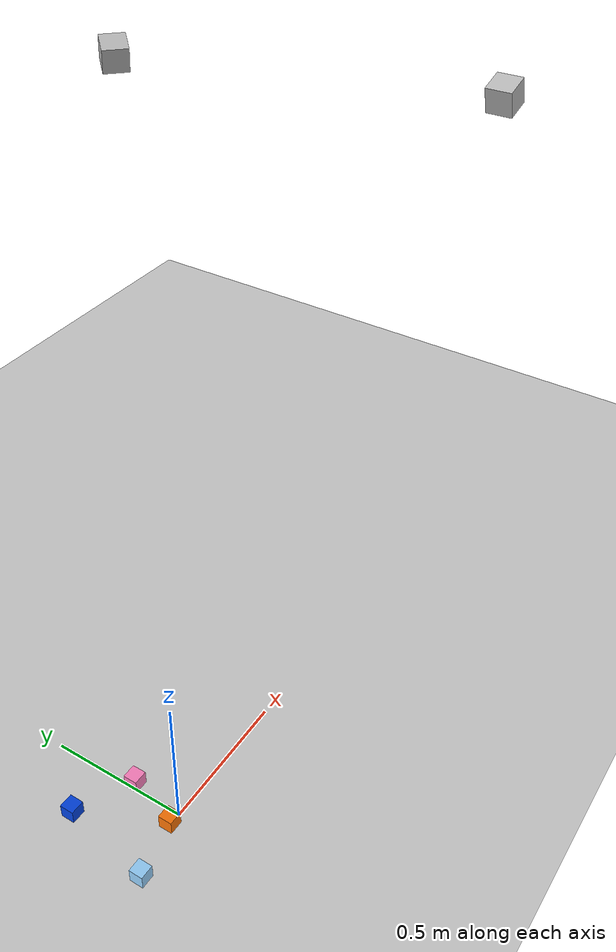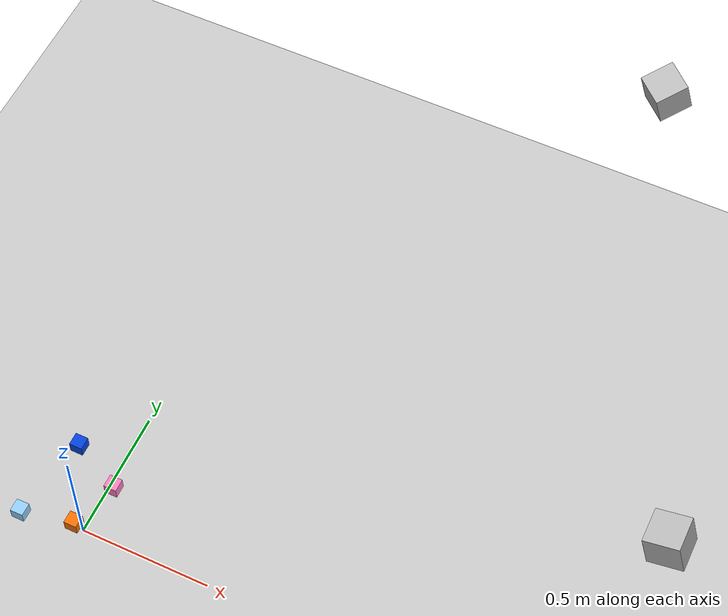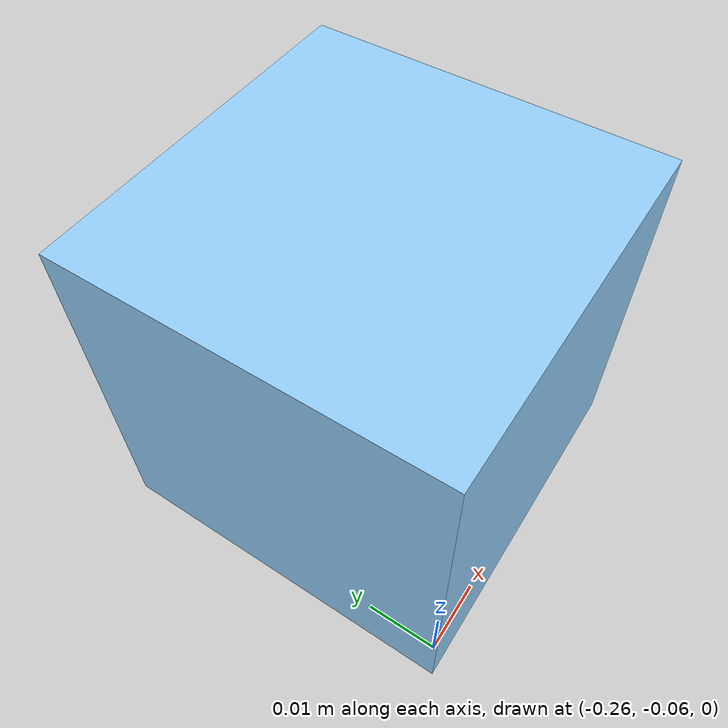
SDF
<?xml version="1.0" encoding="UTF-8"?>
<sdf version="1.8">
  <world name="panda_world">
    <frame name="table1">
      <pose>0 0 0 0 -0 1.5708</pose>
    </frame>
    <frame name="table2">
      <pose>0.794 0 0 0 -0 1.5708</pose>
    </frame>
    <gravity>0 0 -9.8</gravity>
    <magnetic_field>5.5645e-6 22.8758e-6 -42.3884e-6</magnetic_field>
    <physics name="1ms" default="false" type="ignored">
      <max_step_size>0.001</max_step_size>
      <real_time_factor>1.0</real_time_factor>
      <real_time_update_rate>1000.0</real_time_update_rate>
      <max_contacts>20</max_contacts>
    </physics>
    <scene>
      <ambient>0.4 0.4 0.4 1</ambient>
      <background>0.7 0.7 0.7 1</background>
      <shadows>true</shadows>
      <grid>true</grid>
      <origin_visual>true</origin_visual>
    </scene>
    <light name="sun" type="directional">
      <cast_shadows>true</cast_shadows>
      <intensity>1.0</intensity>
      <diffuse>0.8 0.8 0.8 1</diffuse>
      <specular>0.2 0.2 0.2 1</specular>
      <attenuation>
        <range>1000.0</range>
        <linear>0.01</linear>
        <constant>0.9</constant>
        <quadratic>0.001</quadratic>
      </attenuation>
      <direction>-0.5 0.1 -0.9</direction>
      <spot>
        <inner_angle>0.0</inner_angle>
        <outer_angle>0.0</outer_angle>
        <falloff>0.0</falloff>
      </spot>
      <pose>0 0 10 0 -0 0</pose>
    </light>
    <frame name="tabletop_1">
      <pose relative_to="table1">0 0 1.015 0 0 0</pose>
    </frame>
    <frame name="tabletop_2">
      <pose relative_to="table2">0 0 1.015 0 0 0</pose>
    </frame>
    <model name="ground_plane">
      <static>true</static>
      <self_collide>false</self_collide>
      <allow_auto_disable>true</allow_auto_disable>
      <enable_wind>false</enable_wind>
      <pose>0 0 0 0 -0 0</pose>
      <link name="link">
        <gravity>true</gravity>
        <enable_wind>false</enable_wind>
        <self_collide>false</self_collide>
        <kinematic>false</kinematic>
        <must_be_base_link>false</must_be_base_link>
        <collision name="collision">
          <laser_retro>0.0</laser_retro>
          <max_contacts>10</max_contacts>
          <geometry>
            <plane>
              <normal>0 0 1</normal>
              <size>1000 1000</size>
            </plane>
          </geometry>
          <surface>
            <friction>
              <ode>
                <mu>1.0</mu>
                <mu2>1.0</mu2>
                <fdir1>0 0 0</fdir1>
                <slip1>0.0</slip1>
                <slip2>0.0</slip2>
              </ode>
            </friction>
            <contact>
              <collide_without_contact>false</collide_without_contact>
              <collide_without_contact_bitmask>1</collide_without_contact_bitmask>
              <collide_bitmask>65535</collide_bitmask>
              <category_bitmask>65535</category_bitmask>
              <poissons_ratio>0.3</poissons_ratio>
              <elastic_modulus>-1.0</elastic_modulus>
            </contact>
          </surface>
        </collision>
        <visual name="visual">
          <cast_shadows>true</cast_shadows>
          <laser_retro>0.0</laser_retro>
          <transparency>0.0</transparency>
          <visibility_flags>4294967295</visibility_flags>
          <material>
            <render_order>0.0</render_order>
            <lighting>true</lighting>
            <ambient>0.8 0.8 0.8 1</ambient>
            <diffuse>0.8 0.8 0.8 1</diffuse>
            <specular>0.8 0.8 0.8 1</specular>
            <emissive>0 0 0 1</emissive>
            <double_sided>false</double_sided>
          </material>
          <geometry>
            <plane>
              <normal>0 0 1</normal>
              <size>100 100</size>
            </plane>
          </geometry>
          <plugin name="__default__" filename="__default__"/>
        </visual>
      </link>
      <plugin name="__default__" filename="__default__"/>
    </model>
    <model name="main_camera">
      <static>true</static>
      <self_collide>false</self_collide>
      <allow_auto_disable>true</allow_auto_disable>
      <enable_wind>false</enable_wind>
      <pose>2 0 1.75 -0 0.282863 3.14</pose>
      <link name="link">
        <gravity>true</gravity>
        <enable_wind>false</enable_wind>
        <self_collide>false</self_collide>
        <kinematic>false</kinematic>
        <must_be_base_link>false</must_be_base_link>
        <pose>0.05 0.05 0.05 0 -0 0</pose>
        <visual name="visual">
          <cast_shadows>true</cast_shadows>
          <laser_retro>0.0</laser_retro>
          <transparency>0.0</transparency>
          <visibility_flags>4294967295</visibility_flags>
          <geometry>
            <box>
              <size>0.1 0.1 0.1</size>
            </box>
          </geometry>
        </visual>
        <sensor name="camera" type="camera">
          <always_on>true</always_on>
          <update_rate>30.0</update_rate>
          <visualize>true</visualize>
          <topic>main_camera</topic>
          <enable_metrics>false</enable_metrics>
          <camera name="__default__">
            <horizontal_fov>1.13446</horizontal_fov>
            <image>
              <width>1920</width>
              <height>1080</height>
              <format>R8G8B8</format>
            </image>
            <clip>
              <near>0.01</near>
              <far>100.0</far>
            </clip>
            <visibility_mask>4294967295</visibility_mask>
          </camera>
        </sensor>
      </link>
    </model>
    <model name="sideview_camera">
      <static>true</static>
      <self_collide>false</self_collide>
      <allow_auto_disable>true</allow_auto_disable>
      <enable_wind>false</enable_wind>
      <pose>1.4530739784240723 1.3485211133956909 1.796921968460083 0 3.03650762e-01 -2.33415348</pose>
      <link name="link">
        <gravity>true</gravity>
        <enable_wind>false</enable_wind>
        <self_collide>false</self_collide>
        <kinematic>false</kinematic>
        <must_be_base_link>false</must_be_base_link>
        <pose>0.05 0.05 0.05 0 -0 0</pose>
        <visual name="visual">
          <cast_shadows>true</cast_shadows>
          <laser_retro>0.0</laser_retro>
          <transparency>0.0</transparency>
          <visibility_flags>4294967295</visibility_flags>
          <geometry>
            <box>
              <size>0.1 0.1 0.1</size>
            </box>
          </geometry>
        </visual>
        <sensor name="camera" type="camera">
          <always_on>true</always_on>
          <update_rate>30.0</update_rate>
          <visualize>true</visualize>
          <topic>sideview_camera</topic>
          <enable_metrics>false</enable_metrics>
          <camera name="__default__">
            <horizontal_fov>1.13446</horizontal_fov>
            <image>
              <width>1920</width>
              <height>1080</height>
              <format>R8G8B8</format>
            </image>
            <clip>
              <near>0.01</near>
              <far>100.0</far>
            </clip>
            <visibility_mask>4294967295</visibility_mask>
          </camera>
        </sensor>
      </link>
    </model>
    <model name="box_copy_0">
      <static>false</static>
      <self_collide>false</self_collide>
      <allow_auto_disable>true</allow_auto_disable>
      <enable_wind>false</enable_wind>
      <pose relative_to="tabletop_2">-0.2379753249844183 -0.036526411138213755 0.025 0 0 0</pose>
      <link name="box_link">
        <gravity>true</gravity>
        <enable_wind>false</enable_wind>
        <self_collide>false</self_collide>
        <kinematic>false</kinematic>
        <must_be_base_link>false</must_be_base_link>
        <inertial>
          <mass>1.0</mass>
          <pose>0 0 0 0 0 0</pose>
          <inertia>
            <ixx>0.0004</ixx>
            <ixy>0.0</ixy>
            <ixz>0.0</ixz>
            <iyy>0.0004</iyy>
            <iyz>0.0</iyz>
            <izz>0.0004</izz>
          </inertia>
        </inertial>
        <collision name="box_collision">
          <laser_retro>0.0</laser_retro>
          <max_contacts>10</max_contacts>
          <geometry>
            <box>
              <size>.05 .05 .05</size>
            </box>
          </geometry>
          <surface>
            <friction>
              <ode>
                <mu>1.0</mu>
                <mu2>1.0</mu2>
                <fdir1>0 0 0</fdir1>
                <slip1>0.0</slip1>
                <slip2>0.0</slip2>
              </ode>
            </friction>
            <contact>
              <collide_without_contact>false</collide_without_contact>
              <collide_without_contact_bitmask>1</collide_without_contact_bitmask>
              <collide_bitmask>65535</collide_bitmask>
              <category_bitmask>65535</category_bitmask>
              <poissons_ratio>0.3</poissons_ratio>
              <elastic_modulus>-1.0</elastic_modulus>
            </contact>
          </surface>
        </collision>
        <visual name="box_visual">
          <cast_shadows>true</cast_shadows>
          <laser_retro>0.0</laser_retro>
          <transparency>0.0</transparency>
          <visibility_flags>4294967295</visibility_flags>
          <material>
            <render_order>0.0</render_order>
            <lighting>true</lighting>
            <ambient>0.5843137254901961 0.8156862745098039 0.9882352941176471 1.0</ambient>
            <diffuse>0.5843137254901961 0.8156862745098039 0.9882352941176471 1.0</diffuse>
            <specular>0.5843137254901961 0.8156862745098039 0.9882352941176471 1.0</specular>
            <emissive>0 0 0 1</emissive>
            <double_sided>false</double_sided>
          </material>
          <geometry>
            <box>
              <size>.05 .05 .05</size>
            </box>
          </geometry>
        </visual>
      </link>
    </model>
    <model name="box_copy_1">
      <static>false</static>
      <self_collide>false</self_collide>
      <allow_auto_disable>true</allow_auto_disable>
      <enable_wind>false</enable_wind>
      <pose relative_to="tabletop_2">-0.04068311278543335 0.004777170226057864 0.025 0 0 0</pose>
      <link name="box_link">
        <gravity>true</gravity>
        <enable_wind>false</enable_wind>
        <self_collide>false</self_collide>
        <kinematic>false</kinematic>
        <must_be_base_link>false</must_be_base_link>
        <inertial>
          <mass>1.0</mass>
          <pose>0 0 0 0 0 0</pose>
          <inertia>
            <ixx>0.0004</ixx>
            <ixy>0.0</ixy>
            <ixz>0.0</ixz>
            <iyy>0.0004</iyy>
            <iyz>0.0</iyz>
            <izz>0.0004</izz>
          </inertia>
        </inertial>
        <collision name="box_collision">
          <laser_retro>0.0</laser_retro>
          <max_contacts>10</max_contacts>
          <geometry>
            <box>
              <size>.05 .05 .05</size>
            </box>
          </geometry>
          <surface>
            <friction>
              <ode>
                <mu>1.0</mu>
                <mu2>1.0</mu2>
                <fdir1>0 0 0</fdir1>
                <slip1>0.0</slip1>
                <slip2>0.0</slip2>
              </ode>
            </friction>
            <contact>
              <collide_without_contact>false</collide_without_contact>
              <collide_without_contact_bitmask>1</collide_without_contact_bitmask>
              <collide_bitmask>65535</collide_bitmask>
              <category_bitmask>65535</category_bitmask>
              <poissons_ratio>0.3</poissons_ratio>
              <elastic_modulus>-1.0</elastic_modulus>
            </contact>
          </surface>
        </collision>
        <visual name="box_visual">
          <cast_shadows>true</cast_shadows>
          <laser_retro>0.0</laser_retro>
          <transparency>0.0</transparency>
          <visibility_flags>4294967295</visibility_flags>
          <material>
            <render_order>0.0</render_order>
            <lighting>true</lighting>
            <ambient>0.9764705882352941 0.45098039215686275 0.023529411764705882 1.0</ambient>
            <diffuse>0.9764705882352941 0.45098039215686275 0.023529411764705882 1.0</diffuse>
            <specular>0.9764705882352941 0.45098039215686275 0.023529411764705882 1.0</specular>
            <emissive>0 0 0 1</emissive>
            <double_sided>false</double_sided>
          </material>
          <geometry>
            <box>
              <size>.05 .05 .05</size>
            </box>
          </geometry>
        </visual>
      </link>
    </model>
    <model name="box_copy_2">
      <static>false</static>
      <self_collide>false</self_collide>
      <allow_auto_disable>true</allow_auto_disable>
      <enable_wind>false</enable_wind>
      <pose relative_to="tabletop_2">-0.17899945947983287 0.29043411395097346 0.025 0 0 0</pose>
      <link name="box_link">
        <gravity>true</gravity>
        <enable_wind>false</enable_wind>
        <self_collide>false</self_collide>
        <kinematic>false</kinematic>
        <must_be_base_link>false</must_be_base_link>
        <inertial>
          <mass>1.0</mass>
          <pose>0 0 0 0 0 0</pose>
          <inertia>
            <ixx>0.0004</ixx>
            <ixy>0.0</ixy>
            <ixz>0.0</ixz>
            <iyy>0.0004</iyy>
            <iyz>0.0</iyz>
            <izz>0.0004</izz>
          </inertia>
        </inertial>
        <collision name="box_collision">
          <laser_retro>0.0</laser_retro>
          <max_contacts>10</max_contacts>
          <geometry>
            <box>
              <size>.05 .05 .05</size>
            </box>
          </geometry>
          <surface>
            <friction>
              <ode>
                <mu>1.0</mu>
                <mu2>1.0</mu2>
                <fdir1>0 0 0</fdir1>
                <slip1>0.0</slip1>
                <slip2>0.0</slip2>
              </ode>
            </friction>
            <contact>
              <collide_without_contact>false</collide_without_contact>
              <collide_without_contact_bitmask>1</collide_without_contact_bitmask>
              <collide_bitmask>65535</collide_bitmask>
              <category_bitmask>65535</category_bitmask>
              <poissons_ratio>0.3</poissons_ratio>
              <elastic_modulus>-1.0</elastic_modulus>
            </contact>
          </surface>
        </collision>
        <visual name="box_visual">
          <cast_shadows>true</cast_shadows>
          <laser_retro>0.0</laser_retro>
          <transparency>0.0</transparency>
          <visibility_flags>4294967295</visibility_flags>
          <material>
            <render_order>0.0</render_order>
            <lighting>true</lighting>
            <ambient>0.011764705882352941 0.2627450980392157 0.8745098039215686 1.0</ambient>
            <diffuse>0.011764705882352941 0.2627450980392157 0.8745098039215686 1.0</diffuse>
            <specular>0.011764705882352941 0.2627450980392157 0.8745098039215686 1.0</specular>
            <emissive>0 0 0 1</emissive>
            <double_sided>false</double_sided>
          </material>
          <geometry>
            <box>
              <size>.05 .05 .05</size>
            </box>
          </geometry>
        </visual>
      </link>
    </model>
    <model name="box_copy_3">
      <static>false</static>
      <self_collide>false</self_collide>
      <allow_auto_disable>true</allow_auto_disable>
      <enable_wind>false</enable_wind>
      <pose relative_to="tabletop_2">0.018392820597537107 0.19312582107619297 0.025 0 0 0</pose>
      <link name="box_link">
        <gravity>true</gravity>
        <enable_wind>false</enable_wind>
        <self_collide>false</self_collide>
        <kinematic>false</kinematic>
        <must_be_base_link>false</must_be_base_link>
        <inertial>
          <mass>1.0</mass>
          <pose>0 0 0 0 0 0</pose>
          <inertia>
            <ixx>0.0004</ixx>
            <ixy>0.0</ixy>
            <ixz>0.0</ixz>
            <iyy>0.0004</iyy>
            <iyz>0.0</iyz>
            <izz>0.0004</izz>
          </inertia>
        </inertial>
        <collision name="box_collision">
          <laser_retro>0.0</laser_retro>
          <max_contacts>10</max_contacts>
          <geometry>
            <box>
              <size>.05 .05 .05</size>
            </box>
          </geometry>
          <surface>
            <friction>
              <ode>
                <mu>1.0</mu>
                <mu2>1.0</mu2>
                <fdir1>0 0 0</fdir1>
                <slip1>0.0</slip1>
                <slip2>0.0</slip2>
              </ode>
            </friction>
            <contact>
              <collide_without_contact>false</collide_without_contact>
              <collide_without_contact_bitmask>1</collide_without_contact_bitmask>
              <collide_bitmask>65535</collide_bitmask>
              <category_bitmask>65535</category_bitmask>
              <poissons_ratio>0.3</poissons_ratio>
              <elastic_modulus>-1.0</elastic_modulus>
            </contact>
          </surface>
        </collision>
        <visual name="box_visual">
          <cast_shadows>true</cast_shadows>
          <laser_retro>0.0</laser_retro>
          <transparency>0.0</transparency>
          <visibility_flags>4294967295</visibility_flags>
          <material>
            <render_order>0.0</render_order>
            <lighting>true</lighting>
            <ambient>1.0 0.5058823529411764 0.7529411764705882 1.0</ambient>
            <diffuse>1.0 0.5058823529411764 0.7529411764705882 1.0</diffuse>
            <specular>1.0 0.5058823529411764 0.7529411764705882 1.0</specular>
            <emissive>0 0 0 1</emissive>
            <double_sided>false</double_sided>
          </material>
          <geometry>
            <box>
              <size>.05 .05 .05</size>
            </box>
          </geometry>
        </visual>
      </link>
    </model>
    <plugin name="ignition::gazebo::systems::Physics" filename="ignition-gazebo-physics-system"/>
    <plugin name="ignition::gazebo::systems::Sensors" filename="ignition-gazebo-sensors-system">
      <render_engine>ogre</render_engine>
    </plugin>
    <plugin name="ignition::gazebo::systems::UserCommands" filename="ignition-gazebo-user-commands-system"/>
    <plugin name="ignition::gazebo::systems::SceneBroadcaster" filename="ignition-gazebo-scene-broadcaster-system"/>
  </world>
</sdf>
<!-- Generated using Lila Legibility v1.0. Seed: 1337 -->
